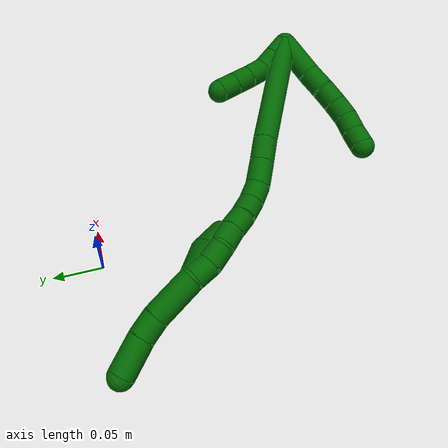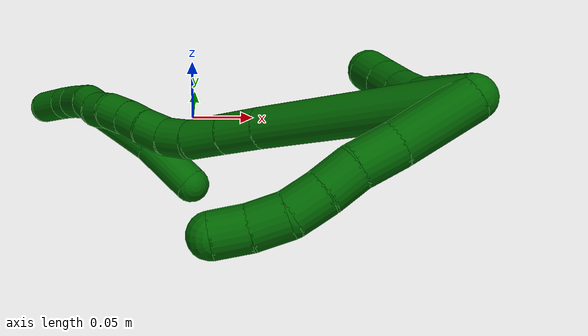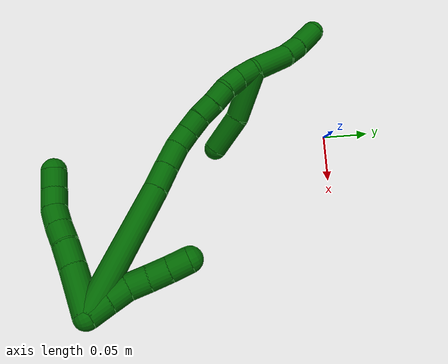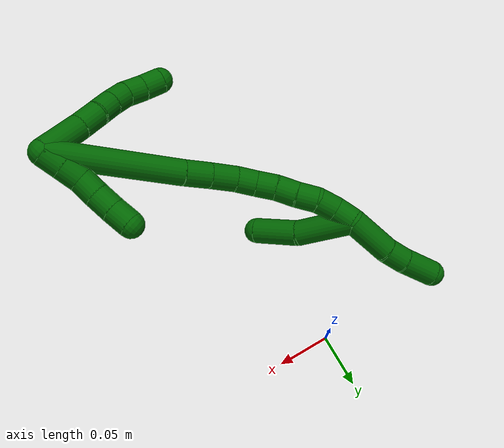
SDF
<sdf version="1.7">
 <world name="default">
  <model name="6">
   <static>0</static>
   <link name="6">
    <collision name="collision-cylinder-e_1_2_8">
     <pose>-0.021931 0.005376 -0.003221 -2.11057 -1.29244 1.85303</pose>
     <geometry><cylinder><radius>0.0125</radius><length>0.045618</length></cylinder></geometry>
     <surface>
      <friction><ode><mu>1.16</mu><mu2>1.16</mu2><slip1>0</slip1><slip2>0</slip2></ode></friction>
      <contact><ode><kp>1e+06</kp><kd>1</kd><max_vel>0</max_vel><min_depth>0.001</min_depth></ode></contact>
     </surface>
    </collision>
    <visual name="visual-cylinder-e_1_2_8">
     <pose>-0.021931 0.005376 -0.003221 -2.11057 -1.29244 1.85303</pose>
     <geometry><cylinder><radius>0.0125</radius><length>0.045618</length></cylinder></geometry>
     <material><ambient>0 0.392157 0.003922 1</ambient></material>
    </visual>
    <collision name="collision-cylinder-e_2_8_9">
     <pose>-0.055355 0.014446 -0.007867 -1.93889 -1.2391 1.60954</pose>
     <geometry><cylinder><radius>0.0125</radius><length>0.024311</length></cylinder></geometry>
     <surface>
      <friction><ode><mu>1.16</mu><mu2>1.16</mu2><slip1>0</slip1><slip2>0</slip2></ode></friction>
      <contact><ode><kp>1e+06</kp><kd>1</kd><max_vel>0</max_vel><min_depth>0.001</min_depth></ode></contact>
     </surface>
    </collision>
    <visual name="visual-cylinder-e_2_8_9">
     <pose>-0.055355 0.014446 -0.007867 -1.93889 -1.2391 1.60954</pose>
     <geometry><cylinder><radius>0.0125</radius><length>0.024311</length></cylinder></geometry>
     <material><ambient>0 0.392157 0.003922 1</ambient></material>
    </visual>
    <collision name="collision-cylinder-e_3_9_10">
     <pose>-0.076717 0.019598 -0.010111 -2.0828 -1.40285 1.93003</pose>
     <geometry><cylinder><radius>0.0125</radius><length>0.02002</length></cylinder></geometry>
     <surface>
      <friction><ode><mu>1.16</mu><mu2>1.16</mu2><slip1>0</slip1><slip2>0</slip2></ode></friction>
      <contact><ode><kp>1e+06</kp><kd>1</kd><max_vel>0</max_vel><min_depth>0.001</min_depth></ode></contact>
     </surface>
    </collision>
    <visual name="visual-cylinder-e_3_9_10">
     <pose>-0.076717 0.019598 -0.010111 -2.0828 -1.40285 1.93003</pose>
     <geometry><cylinder><radius>0.0125</radius><length>0.02002</length></cylinder></geometry>
     <material><ambient>0 0.392157 0.003922 1</ambient></material>
    </visual>
    <collision name="collision-cylinder-e_4_10_11">
     <pose>-0.096269 0.023081 -0.012486 -2.22599 -1.31293 2.00367</pose>
     <geometry><cylinder><radius>0.0125</radius><length>0.020027</length></cylinder></geometry>
     <surface>
      <friction><ode><mu>1.16</mu><mu2>1.16</mu2><slip1>0</slip1><slip2>0</slip2></ode></friction>
      <contact><ode><kp>1e+06</kp><kd>1</kd><max_vel>0</max_vel><min_depth>0.001</min_depth></ode></contact>
     </surface>
    </collision>
    <visual name="visual-cylinder-e_4_10_11">
     <pose>-0.096269 0.023081 -0.012486 -2.22599 -1.31293 2.00367</pose>
     <geometry><cylinder><radius>0.0125</radius><length>0.020027</length></cylinder></geometry>
     <material><ambient>0 0.392157 0.003922 1</ambient></material>
    </visual>
    <collision name="collision-cylinder-e_5_11_12">
     <pose>-0.114472 0.028664 -0.017884 -2.39462 -1.01979 1.91912</pose>
     <geometry><cylinder><radius>0.0125</radius><length>0.020003</length></cylinder></geometry>
     <surface>
      <friction><ode><mu>1.16</mu><mu2>1.16</mu2><slip1>0</slip1><slip2>0</slip2></ode></friction>
      <contact><ode><kp>1e+06</kp><kd>1</kd><max_vel>0</max_vel><min_depth>0.001</min_depth></ode></contact>
     </surface>
    </collision>
    <visual name="visual-cylinder-e_5_11_12">
     <pose>-0.114472 0.028664 -0.017884 -2.39462 -1.01979 1.91912</pose>
     <geometry><cylinder><radius>0.0125</radius><length>0.020003</length></cylinder></geometry>
     <material><ambient>0 0.392157 0.003922 1</ambient></material>
    </visual>
    <collision name="collision-cylinder-e_6_12_6">
     <pose>-0.130924 0.037112 -0.025388 -2.21341 -0.914377 1.55346</pose>
     <geometry><cylinder><radius>0.0125</radius><length>0.020021</length></cylinder></geometry>
     <surface>
      <friction><ode><mu>1.16</mu><mu2>1.16</mu2><slip1>0</slip1><slip2>0</slip2></ode></friction>
      <contact><ode><kp>1e+06</kp><kd>1</kd><max_vel>0</max_vel><min_depth>0.001</min_depth></ode></contact>
     </surface>
    </collision>
    <visual name="visual-cylinder-e_6_12_6">
     <pose>-0.130924 0.037112 -0.025388 -2.21341 -0.914377 1.55346</pose>
     <geometry><cylinder><radius>0.0125</radius><length>0.020021</length></cylinder></geometry>
     <material><ambient>0 0.392157 0.003922 1</ambient></material>
    </visual>
    <collision name="collision-cylinder-e_1_2_13">
     <pose>-0.001443 0.000373 -0.009888 -3.10384 -0.144782 2.63228</pose>
     <geometry><cylinder><radius>0.0125</radius><length>0.02</length></cylinder></geometry>
     <surface>
      <friction><ode><mu>1.16</mu><mu2>1.16</mu2><slip1>0</slip1><slip2>0</slip2></ode></friction>
      <contact><ode><kp>1e+06</kp><kd>1</kd><max_vel>0</max_vel><min_depth>0.001</min_depth></ode></contact>
     </surface>
    </collision>
    <visual name="visual-cylinder-e_1_2_13">
     <pose>-0.001443 0.000373 -0.009888 -3.10384 -0.144782 2.63228</pose>
     <geometry><cylinder><radius>0.0125</radius><length>0.02</length></cylinder></geometry>
     <material><ambient>0 0.392157 0.003922 1</ambient></material>
    </visual>
    <collision name="collision-cylinder-e_2_13_14">
     <pose>-0.004238 0.001103 -0.029678 -3.10563 -0.135615 2.62388</pose>
     <geometry><cylinder><radius>0.0125</radius><length>0.02</length></cylinder></geometry>
     <surface>
      <friction><ode><mu>1.16</mu><mu2>1.16</mu2><slip1>0</slip1><slip2>0</slip2></ode></friction>
      <contact><ode><kp>1e+06</kp><kd>1</kd><max_vel>0</max_vel><min_depth>0.001</min_depth></ode></contact>
     </surface>
    </collision>
    <visual name="visual-cylinder-e_2_13_14">
     <pose>-0.004238 0.001103 -0.029678 -3.10563 -0.135615 2.62388</pose>
     <geometry><cylinder><radius>0.0125</radius><length>0.02</length></cylinder></geometry>
     <material><ambient>0 0.392157 0.003922 1</ambient></material>
    </visual>
    <collision name="collision-cylinder-e_3_14_15">
     <pose>-0.003851 0.002511 -0.049372 -3.03459 0.174774 -2.04429</pose>
     <geometry><cylinder><radius>0.0125</radius><length>0.02</length></cylinder></geometry>
     <surface>
      <friction><ode><mu>1.16</mu><mu2>1.16</mu2><slip1>0</slip1><slip2>0</slip2></ode></friction>
      <contact><ode><kp>1e+06</kp><kd>1</kd><max_vel>0</max_vel><min_depth>0.001</min_depth></ode></contact>
     </surface>
    </collision>
    <visual name="visual-cylinder-e_3_14_15">
     <pose>-0.003851 0.002511 -0.049372 -3.03459 0.174774 -2.04429</pose>
     <geometry><cylinder><radius>0.0125</radius><length>0.02</length></cylinder></geometry>
     <material><ambient>0 0.392157 0.003922 1</ambient></material>
    </visual>
    <collision name="collision-cylinder-e_4_15_16">
     <pose>-8.7e-05 0.005479 -0.068767 -2.9447 0.203903 -1.606</pose>
     <geometry><cylinder><radius>0.0125</radius><length>0.02</length></cylinder></geometry>
     <surface>
      <friction><ode><mu>1.16</mu><mu2>1.16</mu2><slip1>0</slip1><slip2>0</slip2></ode></friction>
      <contact><ode><kp>1e+06</kp><kd>1</kd><max_vel>0</max_vel><min_depth>0.001</min_depth></ode></contact>
     </surface>
    </collision>
    <visual name="visual-cylinder-e_4_15_16">
     <pose>-8.7e-05 0.005479 -0.068767 -2.9447 0.203903 -1.606</pose>
     <geometry><cylinder><radius>0.0125</radius><length>0.02</length></cylinder></geometry>
     <material><ambient>0 0.392157 0.003922 1</ambient></material>
    </visual>
    <collision name="collision-cylinder-e_5_16_5">
     <pose>0.003865 0.009742 -0.087898 -2.89999 0.193878 -1.35078</pose>
     <geometry><cylinder><radius>0.0125</radius><length>0.02</length></cylinder></geometry>
     <surface>
      <friction><ode><mu>1.16</mu><mu2>1.16</mu2><slip1>0</slip1><slip2>0</slip2></ode></friction>
      <contact><ode><kp>1e+06</kp><kd>1</kd><max_vel>0</max_vel><min_depth>0.001</min_depth></ode></contact>
     </surface>
    </collision>
    <visual name="visual-cylinder-e_5_16_5">
     <pose>0.003865 0.009742 -0.087898 -2.89999 0.193878 -1.35078</pose>
     <geometry><cylinder><radius>0.0125</radius><length>0.02</length></cylinder></geometry>
     <material><ambient>0 0.392157 0.003922 1</ambient></material>
    </visual>
    <collision name="collision-cylinder-e_1_2_17">
     <pose>-0.033297 0.017874 -0.051329 -2.8065 -0.549648 2.06099</pose>
     <geometry><cylinder><radius>0.0125</radius><length>0.12748</length></cylinder></geometry>
     <surface>
      <friction><ode><mu>1.16</mu><mu2>1.16</mu2><slip1>0</slip1><slip2>0</slip2></ode></friction>
      <contact><ode><kp>1e+06</kp><kd>1</kd><max_vel>0</max_vel><min_depth>0.001</min_depth></ode></contact>
     </surface>
    </collision>
    <visual name="visual-cylinder-e_1_2_17">
     <pose>-0.033297 0.017874 -0.051329 -2.8065 -0.549648 2.06099</pose>
     <geometry><cylinder><radius>0.0125</radius><length>0.12748</length></cylinder></geometry>
     <material><ambient>0 0.392157 0.003922 1</ambient></material>
    </visual>
    <collision name="collision-cylinder-e_2_17_18">
     <pose>-0.073765 0.039389 -0.112709 -2.79401 -0.590832 2.09508</pose>
     <geometry><cylinder><radius>0.0125</radius><length>0.025746</length></cylinder></geometry>
     <surface>
      <friction><ode><mu>1.16</mu><mu2>1.16</mu2><slip1>0</slip1><slip2>0</slip2></ode></friction>
      <contact><ode><kp>1e+06</kp><kd>1</kd><max_vel>0</max_vel><min_depth>0.001</min_depth></ode></contact>
     </surface>
    </collision>
    <visual name="visual-cylinder-e_2_17_18">
     <pose>-0.073765 0.039389 -0.112709 -2.79401 -0.590832 2.09508</pose>
     <geometry><cylinder><radius>0.0125</radius><length>0.025746</length></cylinder></geometry>
     <material><ambient>0 0.392157 0.003922 1</ambient></material>
    </visual>
    <collision name="collision-cylinder-e_3_18_19">
     <pose>-0.088111 0.046557 -0.133207 -2.81606 -0.576877 2.13061</pose>
     <geometry><cylinder><radius>0.0125</radius><length>0.026309</length></cylinder></geometry>
     <surface>
      <friction><ode><mu>1.16</mu><mu2>1.16</mu2><slip1>0</slip1><slip2>0</slip2></ode></friction>
      <contact><ode><kp>1e+06</kp><kd>1</kd><max_vel>0</max_vel><min_depth>0.001</min_depth></ode></contact>
     </surface>
    </collision>
    <visual name="visual-cylinder-e_3_18_19">
     <pose>-0.088111 0.046557 -0.133207 -2.81606 -0.576877 2.13061</pose>
     <geometry><cylinder><radius>0.0125</radius><length>0.026309</length></cylinder></geometry>
     <material><ambient>0 0.392157 0.003922 1</ambient></material>
    </visual>
    <collision name="collision-cylinder-e_4_19_20">
     <pose>-0.098715 0.053855 -0.152412 -2.7349 -0.345211 1.40377</pose>
     <geometry><cylinder><radius>0.0125</radius><length>0.020268</length></cylinder></geometry>
     <surface>
      <friction><ode><mu>1.16</mu><mu2>1.16</mu2><slip1>0</slip1><slip2>0</slip2></ode></friction>
      <contact><ode><kp>1e+06</kp><kd>1</kd><max_vel>0</max_vel><min_depth>0.001</min_depth></ode></contact>
     </surface>
    </collision>
    <visual name="visual-cylinder-e_4_19_20">
     <pose>-0.098715 0.053855 -0.152412 -2.7349 -0.345211 1.40377</pose>
     <geometry><cylinder><radius>0.0125</radius><length>0.020268</length></cylinder></geometry>
     <material><ambient>0 0.392157 0.003922 1</ambient></material>
    </visual>
    <collision name="collision-cylinder-e_5_20_21">
     <pose>-0.103915 0.062871 -0.169562 -2.5831 -0.177105 0.600543</pose>
     <geometry><cylinder><radius>0.0125</radius><length>0.020105</length></cylinder></geometry>
     <surface>
      <friction><ode><mu>1.16</mu><mu2>1.16</mu2><slip1>0</slip1><slip2>0</slip2></ode></friction>
      <contact><ode><kp>1e+06</kp><kd>1</kd><max_vel>0</max_vel><min_depth>0.001</min_depth></ode></contact>
     </surface>
    </collision>
    <visual name="visual-cylinder-e_5_20_21">
     <pose>-0.103915 0.062871 -0.169562 -2.5831 -0.177105 0.600543</pose>
     <geometry><cylinder><radius>0.0125</radius><length>0.020105</length></cylinder></geometry>
     <material><ambient>0 0.392157 0.003922 1</ambient></material>
    </visual>
    <collision name="collision-cylinder-e_6_21_22">
     <pose>-0.10654 0.072551 -0.186886 -2.68057 -0.085445 0.36036</pose>
     <geometry><cylinder><radius>0.0125</radius><length>0.02002</length></cylinder></geometry>
     <surface>
      <friction><ode><mu>1.16</mu><mu2>1.16</mu2><slip1>0</slip1><slip2>0</slip2></ode></friction>
      <contact><ode><kp>1e+06</kp><kd>1</kd><max_vel>0</max_vel><min_depth>0.001</min_depth></ode></contact>
     </surface>
    </collision>
    <visual name="visual-cylinder-e_6_21_22">
     <pose>-0.10654 0.072551 -0.186886 -2.68057 -0.085445 0.36036</pose>
     <geometry><cylinder><radius>0.0125</radius><length>0.02002</length></cylinder></geometry>
     <material><ambient>0 0.392157 0.003922 1</ambient></material>
    </visual>
    <collision name="collision-cylinder-e_7_22_23">
     <pose>-0.109136 0.081649 -0.204513 -2.64957 -0.17477 0.67139</pose>
     <geometry><cylinder><radius>0.0125</radius><length>0.020036</length></cylinder></geometry>
     <surface>
      <friction><ode><mu>1.16</mu><mu2>1.16</mu2><slip1>0</slip1><slip2>0</slip2></ode></friction>
      <contact><ode><kp>1e+06</kp><kd>1</kd><max_vel>0</max_vel><min_depth>0.001</min_depth></ode></contact>
     </surface>
    </collision>
    <visual name="visual-cylinder-e_7_22_23">
     <pose>-0.109136 0.081649 -0.204513 -2.64957 -0.17477 0.67139</pose>
     <geometry><cylinder><radius>0.0125</radius><length>0.020036</length></cylinder></geometry>
     <material><ambient>0 0.392157 0.003922 1</ambient></material>
    </visual>
    <collision name="collision-cylinder-e_8_23_24">
     <pose>-0.112823 0.08821 -0.222833 -2.9466 -0.195671 1.57427</pose>
     <geometry><cylinder><radius>0.0125</radius><length>0.020004</length></cylinder></geometry>
     <surface>
      <friction><ode><mu>1.16</mu><mu2>1.16</mu2><slip1>0</slip1><slip2>0</slip2></ode></friction>
      <contact><ode><kp>1e+06</kp><kd>1</kd><max_vel>0</max_vel><min_depth>0.001</min_depth></ode></contact>
     </surface>
    </collision>
    <visual name="visual-cylinder-e_8_23_24">
     <pose>-0.112823 0.08821 -0.222833 -2.9466 -0.195671 1.57427</pose>
     <geometry><cylinder><radius>0.0125</radius><length>0.020004</length></cylinder></geometry>
     <material><ambient>0 0.392157 0.003922 1</ambient></material>
    </visual>
    <collision name="collision-cylinder-e_9_24_1">
     <pose>-0.114035 0.092718 -0.242102 -2.8776 0.073199 -0.538196</pose>
     <geometry><cylinder><radius>0.0125</radius><length>0.020032</length></cylinder></geometry>
     <surface>
      <friction><ode><mu>1.16</mu><mu2>1.16</mu2><slip1>0</slip1><slip2>0</slip2></ode></friction>
      <contact><ode><kp>1e+06</kp><kd>1</kd><max_vel>0</max_vel><min_depth>0.001</min_depth></ode></contact>
     </surface>
    </collision>
    <visual name="visual-cylinder-e_9_24_1">
     <pose>-0.114035 0.092718 -0.242102 -2.8776 0.073199 -0.538196</pose>
     <geometry><cylinder><radius>0.0125</radius><length>0.020032</length></cylinder></geometry>
     <material><ambient>0 0.392157 0.003922 1</ambient></material>
    </visual>
    <collision name="collision-cylinder-e_1_1_25">
     <pose>-0.114889 0.095518 -0.273977 -3.13288 -0.071234 2.89823</pose>
     <geometry><cylinder><radius>0.0125</radius><length>0.04458</length></cylinder></geometry>
     <surface>
      <friction><ode><mu>1.16</mu><mu2>1.16</mu2><slip1>0</slip1><slip2>0</slip2></ode></friction>
      <contact><ode><kp>1e+06</kp><kd>1</kd><max_vel>0</max_vel><min_depth>0.001</min_depth></ode></contact>
     </surface>
    </collision>
    <visual name="visual-cylinder-e_1_1_25">
     <pose>-0.114889 0.095518 -0.273977 -3.13288 -0.071234 2.89823</pose>
     <geometry><cylinder><radius>0.0125</radius><length>0.04458</length></cylinder></geometry>
     <material><ambient>0 0.392157 0.003922 1</ambient></material>
    </visual>
    <collision name="collision-cylinder-e_2_25_26">
     <pose>-0.118805 0.096708 -0.306483 -3.04494 -0.222021 2.32288</pose>
     <geometry><cylinder><radius>0.0125</radius><length>0.021163</length></cylinder></geometry>
     <surface>
      <friction><ode><mu>1.16</mu><mu2>1.16</mu2><slip1>0</slip1><slip2>0</slip2></ode></friction>
      <contact><ode><kp>1e+06</kp><kd>1</kd><max_vel>0</max_vel><min_depth>0.001</min_depth></ode></contact>
     </surface>
    </collision>
    <visual name="visual-cylinder-e_2_25_26">
     <pose>-0.118805 0.096708 -0.306483 -3.04494 -0.222021 2.32288</pose>
     <geometry><cylinder><radius>0.0125</radius><length>0.021163</length></cylinder></geometry>
     <material><ambient>0 0.392157 0.003922 1</ambient></material>
    </visual>
    <collision name="collision-cylinder-e_3_26_4">
     <pose>-0.12679 0.099966 -0.332766 -3.00122 -0.336443 2.35663</pose>
     <geometry><cylinder><radius>0.0125</radius><length>0.034258</length></cylinder></geometry>
     <surface>
      <friction><ode><mu>1.16</mu><mu2>1.16</mu2><slip1>0</slip1><slip2>0</slip2></ode></friction>
      <contact><ode><kp>1e+06</kp><kd>1</kd><max_vel>0</max_vel><min_depth>0.001</min_depth></ode></contact>
     </surface>
    </collision>
    <visual name="visual-cylinder-e_3_26_4">
     <pose>-0.12679 0.099966 -0.332766 -3.00122 -0.336443 2.35663</pose>
     <geometry><cylinder><radius>0.0125</radius><length>0.034258</length></cylinder></geometry>
     <material><ambient>0 0.392157 0.003922 1</ambient></material>
    </visual>
    <collision name="collision-cylinder-e_1_1_27">
     <pose>-0.109841 0.070492 -0.238985 1.09613 0.123348 0.075357</pose>
     <geometry><cylinder><radius>0.0125</radius><length>0.056264</length></cylinder></geometry>
     <surface>
      <friction><ode><mu>1.16</mu><mu2>1.16</mu2><slip1>0</slip1><slip2>0</slip2></ode></friction>
      <contact><ode><kp>1e+06</kp><kd>1</kd><max_vel>0</max_vel><min_depth>0.001</min_depth></ode></contact>
     </surface>
    </collision>
    <visual name="visual-cylinder-e_1_1_27">
     <pose>-0.109841 0.070492 -0.238985 1.09613 0.123348 0.075357</pose>
     <geometry><cylinder><radius>0.0125</radius><length>0.056264</length></cylinder></geometry>
     <material><ambient>0 0.392157 0.003922 1</ambient></material>
    </visual>
    <collision name="collision-cylinder-e_2_27_3">
     <pose>-0.10743 0.028655 -0.212517 0.892316 -0.04801 -0.022968</pose>
     <geometry><cylinder><radius>0.0125</radius><length>0.043736</length></cylinder></geometry>
     <surface>
      <friction><ode><mu>1.16</mu><mu2>1.16</mu2><slip1>0</slip1><slip2>0</slip2></ode></friction>
      <contact><ode><kp>1e+06</kp><kd>1</kd><max_vel>0</max_vel><min_depth>0.001</min_depth></ode></contact>
     </surface>
    </collision>
    <visual name="visual-cylinder-e_2_27_3">
     <pose>-0.10743 0.028655 -0.212517 0.892316 -0.04801 -0.022968</pose>
     <geometry><cylinder><radius>0.0125</radius><length>0.043736</length></cylinder></geometry>
     <material><ambient>0 0.392157 0.003922 1</ambient></material>
    </visual>
    <collision name="collision-sphere-3">
     <pose>-0.108479 0.01165 -0.198808 0 -0 0</pose>
     <geometry><sphere><radius>0.0125</radius></sphere></geometry>
     <surface>
      <friction><ode><mu>1.16</mu><mu2>1.16</mu2><slip1>0</slip1><slip2>0</slip2></ode></friction>
      <contact><ode><kp>1e+06</kp><kd>1</kd><max_vel>0</max_vel><min_depth>0.001</min_depth></ode></contact>
     </surface>
    </collision>
    <visual name="visual-sphere-3">
     <pose>-0.108479 0.01165 -0.198808 0 -0 0</pose>
     <geometry><sphere><radius>0.0125</radius></sphere></geometry>
     <material><ambient>0 0.392157 0.003922 1</ambient></material>
    </visual>
    <collision name="collision-sphere-27">
     <pose>-0.10638 0.04566 -0.226225 0 -0 0</pose>
     <geometry><sphere><radius>0.0125</radius></sphere></geometry>
     <surface>
      <friction><ode><mu>1.16</mu><mu2>1.16</mu2><slip1>0</slip1><slip2>0</slip2></ode></friction>
      <contact><ode><kp>1e+06</kp><kd>1</kd><max_vel>0</max_vel><min_depth>0.001</min_depth></ode></contact>
     </surface>
    </collision>
    <visual name="visual-sphere-27">
     <pose>-0.10638 0.04566 -0.226225 0 -0 0</pose>
     <geometry><sphere><radius>0.0125</radius></sphere></geometry>
     <material><ambient>0 0.392157 0.003922 1</ambient></material>
    </visual>
    <collision name="collision-sphere-4">
     <pose>-0.132445 0.102228 -0.348776 0 -0 0</pose>
     <geometry><sphere><radius>0.0125</radius></sphere></geometry>
     <surface>
      <friction><ode><mu>1.16</mu><mu2>1.16</mu2><slip1>0</slip1><slip2>0</slip2></ode></friction>
      <contact><ode><kp>1e+06</kp><kd>1</kd><max_vel>0</max_vel><min_depth>0.001</min_depth></ode></contact>
     </surface>
    </collision>
    <visual name="visual-sphere-4">
     <pose>-0.132445 0.102228 -0.348776 0 -0 0</pose>
     <geometry><sphere><radius>0.0125</radius></sphere></geometry>
     <material><ambient>0 0.392157 0.003922 1</ambient></material>
    </visual>
    <collision name="collision-sphere-26">
     <pose>-0.121135 0.097704 -0.316757 0 -0 0</pose>
     <geometry><sphere><radius>0.0125</radius></sphere></geometry>
     <surface>
      <friction><ode><mu>1.16</mu><mu2>1.16</mu2><slip1>0</slip1><slip2>0</slip2></ode></friction>
      <contact><ode><kp>1e+06</kp><kd>1</kd><max_vel>0</max_vel><min_depth>0.001</min_depth></ode></contact>
     </surface>
    </collision>
    <visual name="visual-sphere-26">
     <pose>-0.121135 0.097704 -0.316757 0 -0 0</pose>
     <geometry><sphere><radius>0.0125</radius></sphere></geometry>
     <material><ambient>0 0.392157 0.003922 1</ambient></material>
    </visual>
    <collision name="collision-sphere-25">
     <pose>-0.116475 0.095712 -0.29621 0 -0 0</pose>
     <geometry><sphere><radius>0.0125</radius></sphere></geometry>
     <surface>
      <friction><ode><mu>1.16</mu><mu2>1.16</mu2><slip1>0</slip1><slip2>0</slip2></ode></friction>
      <contact><ode><kp>1e+06</kp><kd>1</kd><max_vel>0</max_vel><min_depth>0.001</min_depth></ode></contact>
     </surface>
    </collision>
    <visual name="visual-sphere-25">
     <pose>-0.116475 0.095712 -0.29621 0 -0 0</pose>
     <geometry><sphere><radius>0.0125</radius></sphere></geometry>
     <material><ambient>0 0.392157 0.003922 1</ambient></material>
    </visual>
    <collision name="collision-sphere-1">
     <pose>-0.113303 0.095324 -0.251745 0 -0 0</pose>
     <geometry><sphere><radius>0.0125</radius></sphere></geometry>
     <surface>
      <friction><ode><mu>1.16</mu><mu2>1.16</mu2><slip1>0</slip1><slip2>0</slip2></ode></friction>
      <contact><ode><kp>1e+06</kp><kd>1</kd><max_vel>0</max_vel><min_depth>0.001</min_depth></ode></contact>
     </surface>
    </collision>
    <visual name="visual-sphere-1">
     <pose>-0.113303 0.095324 -0.251745 0 -0 0</pose>
     <geometry><sphere><radius>0.0125</radius></sphere></geometry>
     <material><ambient>0 0.392157 0.003922 1</ambient></material>
    </visual>
    <collision name="collision-sphere-24">
     <pose>-0.114768 0.090111 -0.232458 0 -0 0</pose>
     <geometry><sphere><radius>0.0125</radius></sphere></geometry>
     <surface>
      <friction><ode><mu>1.16</mu><mu2>1.16</mu2><slip1>0</slip1><slip2>0</slip2></ode></friction>
      <contact><ode><kp>1e+06</kp><kd>1</kd><max_vel>0</max_vel><min_depth>0.001</min_depth></ode></contact>
     </surface>
    </collision>
    <visual name="visual-sphere-24">
     <pose>-0.114768 0.090111 -0.232458 0 -0 0</pose>
     <geometry><sphere><radius>0.0125</radius></sphere></geometry>
     <material><ambient>0 0.392157 0.003922 1</ambient></material>
    </visual>
    <collision name="collision-sphere-23">
     <pose>-0.110878 0.086309 -0.213208 0 -0 0</pose>
     <geometry><sphere><radius>0.0125</radius></sphere></geometry>
     <surface>
      <friction><ode><mu>1.16</mu><mu2>1.16</mu2><slip1>0</slip1><slip2>0</slip2></ode></friction>
      <contact><ode><kp>1e+06</kp><kd>1</kd><max_vel>0</max_vel><min_depth>0.001</min_depth></ode></contact>
     </surface>
    </collision>
    <visual name="visual-sphere-23">
     <pose>-0.110878 0.086309 -0.213208 0 -0 0</pose>
     <geometry><sphere><radius>0.0125</radius></sphere></geometry>
     <material><ambient>0 0.392157 0.003922 1</ambient></material>
    </visual>
    <collision name="collision-sphere-22">
     <pose>-0.107394 0.076988 -0.195818 0 -0 0</pose>
     <geometry><sphere><radius>0.0125</radius></sphere></geometry>
     <surface>
      <friction><ode><mu>1.16</mu><mu2>1.16</mu2><slip1>0</slip1><slip2>0</slip2></ode></friction>
      <contact><ode><kp>1e+06</kp><kd>1</kd><max_vel>0</max_vel><min_depth>0.001</min_depth></ode></contact>
     </surface>
    </collision>
    <visual name="visual-sphere-22">
     <pose>-0.107394 0.076988 -0.195818 0 -0 0</pose>
     <geometry><sphere><radius>0.0125</radius></sphere></geometry>
     <material><ambient>0 0.392157 0.003922 1</ambient></material>
    </visual>
    <collision name="collision-sphere-21">
     <pose>-0.105686 0.068114 -0.177954 0 -0 0</pose>
     <geometry><sphere><radius>0.0125</radius></sphere></geometry>
     <surface>
      <friction><ode><mu>1.16</mu><mu2>1.16</mu2><slip1>0</slip1><slip2>0</slip2></ode></friction>
      <contact><ode><kp>1e+06</kp><kd>1</kd><max_vel>0</max_vel><min_depth>0.001</min_depth></ode></contact>
     </surface>
    </collision>
    <visual name="visual-sphere-21">
     <pose>-0.105686 0.068114 -0.177954 0 -0 0</pose>
     <geometry><sphere><radius>0.0125</radius></sphere></geometry>
     <material><ambient>0 0.392157 0.003922 1</ambient></material>
    </visual>
    <collision name="collision-sphere-12">
     <pose>-0.122994 0.032221 -0.021726 0 -0 0</pose>
     <geometry><sphere><radius>0.0125</radius></sphere></geometry>
     <surface>
      <friction><ode><mu>1.16</mu><mu2>1.16</mu2><slip1>0</slip1><slip2>0</slip2></ode></friction>
      <contact><ode><kp>1e+06</kp><kd>1</kd><max_vel>0</max_vel><min_depth>0.001</min_depth></ode></contact>
     </surface>
    </collision>
    <visual name="visual-sphere-12">
     <pose>-0.122994 0.032221 -0.021726 0 -0 0</pose>
     <geometry><sphere><radius>0.0125</radius></sphere></geometry>
     <material><ambient>0 0.392157 0.003922 1</ambient></material>
    </visual>
    <collision name="collision-sphere-11">
     <pose>-0.105951 0.025106 -0.014042 0 -0 0</pose>
     <geometry><sphere><radius>0.0125</radius></sphere></geometry>
     <surface>
      <friction><ode><mu>1.16</mu><mu2>1.16</mu2><slip1>0</slip1><slip2>0</slip2></ode></friction>
      <contact><ode><kp>1e+06</kp><kd>1</kd><max_vel>0</max_vel><min_depth>0.001</min_depth></ode></contact>
     </surface>
    </collision>
    <visual name="visual-sphere-11">
     <pose>-0.105951 0.025106 -0.014042 0 -0 0</pose>
     <geometry><sphere><radius>0.0125</radius></sphere></geometry>
     <material><ambient>0 0.392157 0.003922 1</ambient></material>
    </visual>
    <collision name="collision-sphere-10">
     <pose>-0.086587 0.021056 -0.01093 0 -0 0</pose>
     <geometry><sphere><radius>0.0125</radius></sphere></geometry>
     <surface>
      <friction><ode><mu>1.16</mu><mu2>1.16</mu2><slip1>0</slip1><slip2>0</slip2></ode></friction>
      <contact><ode><kp>1e+06</kp><kd>1</kd><max_vel>0</max_vel><min_depth>0.001</min_depth></ode></contact>
     </surface>
    </collision>
    <visual name="visual-sphere-10">
     <pose>-0.086587 0.021056 -0.01093 0 -0 0</pose>
     <geometry><sphere><radius>0.0125</radius></sphere></geometry>
     <material><ambient>0 0.392157 0.003922 1</ambient></material>
    </visual>
    <collision name="collision-sphere-9">
     <pose>-0.066848 0.018139 -0.009291 0 -0 0</pose>
     <geometry><sphere><radius>0.0125</radius></sphere></geometry>
     <surface>
      <friction><ode><mu>1.16</mu><mu2>1.16</mu2><slip1>0</slip1><slip2>0</slip2></ode></friction>
      <contact><ode><kp>1e+06</kp><kd>1</kd><max_vel>0</max_vel><min_depth>0.001</min_depth></ode></contact>
     </surface>
    </collision>
    <visual name="visual-sphere-9">
     <pose>-0.066848 0.018139 -0.009291 0 -0 0</pose>
     <geometry><sphere><radius>0.0125</radius></sphere></geometry>
     <material><ambient>0 0.392157 0.003922 1</ambient></material>
    </visual>
    <collision name="collision-sphere-2">
     <geometry><sphere><radius>0.0125</radius></sphere></geometry>
     <surface>
      <friction><ode><mu>1.16</mu><mu2>1.16</mu2><slip1>0</slip1><slip2>0</slip2></ode></friction>
      <contact><ode><kp>1e+06</kp><kd>1</kd><max_vel>0</max_vel><min_depth>0.001</min_depth></ode></contact>
     </surface>
    </collision>
    <visual name="visual-sphere-2">
     <geometry><sphere><radius>0.0125</radius></sphere></geometry>
     <material><ambient>0 0.392157 0.003922 1</ambient></material>
    </visual>
    <collision name="collision-sphere-19">
     <pose>-0.095285 0.050083 -0.143654 0 -0 0</pose>
     <geometry><sphere><radius>0.0125</radius></sphere></geometry>
     <surface>
      <friction><ode><mu>1.16</mu><mu2>1.16</mu2><slip1>0</slip1><slip2>0</slip2></ode></friction>
      <contact><ode><kp>1e+06</kp><kd>1</kd><max_vel>0</max_vel><min_depth>0.001</min_depth></ode></contact>
     </surface>
    </collision>
    <visual name="visual-sphere-19">
     <pose>-0.095285 0.050083 -0.143654 0 -0 0</pose>
     <geometry><sphere><radius>0.0125</radius></sphere></geometry>
     <material><ambient>0 0.392157 0.003922 1</ambient></material>
    </visual>
    <collision name="collision-sphere-8">
     <pose>-0.043863 0.010753 -0.006442 0 -0 0</pose>
     <geometry><sphere><radius>0.0125</radius></sphere></geometry>
     <surface>
      <friction><ode><mu>1.16</mu><mu2>1.16</mu2><slip1>0</slip1><slip2>0</slip2></ode></friction>
      <contact><ode><kp>1e+06</kp><kd>1</kd><max_vel>0</max_vel><min_depth>0.001</min_depth></ode></contact>
     </surface>
    </collision>
    <visual name="visual-sphere-8">
     <pose>-0.043863 0.010753 -0.006442 0 -0 0</pose>
     <geometry><sphere><radius>0.0125</radius></sphere></geometry>
     <material><ambient>0 0.392157 0.003922 1</ambient></material>
    </visual>
    <collision name="collision-sphere-6">
     <pose>-0.138854 0.042003 -0.029049 0 -0 0</pose>
     <geometry><sphere><radius>0.0125</radius></sphere></geometry>
     <surface>
      <friction><ode><mu>1.16</mu><mu2>1.16</mu2><slip1>0</slip1><slip2>0</slip2></ode></friction>
      <contact><ode><kp>1e+06</kp><kd>1</kd><max_vel>0</max_vel><min_depth>0.001</min_depth></ode></contact>
     </surface>
    </collision>
    <visual name="visual-sphere-6">
     <pose>-0.138854 0.042003 -0.029049 0 -0 0</pose>
     <geometry><sphere><radius>0.0125</radius></sphere></geometry>
     <material><ambient>0 0.392157 0.003922 1</ambient></material>
    </visual>
    <collision name="collision-sphere-13">
     <pose>-0.002886 0.000747 -0.019777 0 -0 0</pose>
     <geometry><sphere><radius>0.0125</radius></sphere></geometry>
     <surface>
      <friction><ode><mu>1.16</mu><mu2>1.16</mu2><slip1>0</slip1><slip2>0</slip2></ode></friction>
      <contact><ode><kp>1e+06</kp><kd>1</kd><max_vel>0</max_vel><min_depth>0.001</min_depth></ode></contact>
     </surface>
    </collision>
    <visual name="visual-sphere-13">
     <pose>-0.002886 0.000747 -0.019777 0 -0 0</pose>
     <geometry><sphere><radius>0.0125</radius></sphere></geometry>
     <material><ambient>0 0.392157 0.003922 1</ambient></material>
    </visual>
    <collision name="collision-sphere-14">
     <pose>-0.00559 0.001459 -0.03958 0 -0 0</pose>
     <geometry><sphere><radius>0.0125</radius></sphere></geometry>
     <surface>
      <friction><ode><mu>1.16</mu><mu2>1.16</mu2><slip1>0</slip1><slip2>0</slip2></ode></friction>
      <contact><ode><kp>1e+06</kp><kd>1</kd><max_vel>0</max_vel><min_depth>0.001</min_depth></ode></contact>
     </surface>
    </collision>
    <visual name="visual-sphere-14">
     <pose>-0.00559 0.001459 -0.03958 0 -0 0</pose>
     <geometry><sphere><radius>0.0125</radius></sphere></geometry>
     <material><ambient>0 0.392157 0.003922 1</ambient></material>
    </visual>
    <collision name="collision-sphere-15">
     <pose>-0.002112 0.003563 -0.059163 0 -0 0</pose>
     <geometry><sphere><radius>0.0125</radius></sphere></geometry>
     <surface>
      <friction><ode><mu>1.16</mu><mu2>1.16</mu2><slip1>0</slip1><slip2>0</slip2></ode></friction>
      <contact><ode><kp>1e+06</kp><kd>1</kd><max_vel>0</max_vel><min_depth>0.001</min_depth></ode></contact>
     </surface>
    </collision>
    <visual name="visual-sphere-15">
     <pose>-0.002112 0.003563 -0.059163 0 -0 0</pose>
     <geometry><sphere><radius>0.0125</radius></sphere></geometry>
     <material><ambient>0 0.392157 0.003922 1</ambient></material>
    </visual>
    <collision name="collision-sphere-16">
     <pose>0.001938 0.007394 -0.07837 0 -0 0</pose>
     <geometry><sphere><radius>0.0125</radius></sphere></geometry>
     <surface>
      <friction><ode><mu>1.16</mu><mu2>1.16</mu2><slip1>0</slip1><slip2>0</slip2></ode></friction>
      <contact><ode><kp>1e+06</kp><kd>1</kd><max_vel>0</max_vel><min_depth>0.001</min_depth></ode></contact>
     </surface>
    </collision>
    <visual name="visual-sphere-16">
     <pose>0.001938 0.007394 -0.07837 0 -0 0</pose>
     <geometry><sphere><radius>0.0125</radius></sphere></geometry>
     <material><ambient>0 0.392157 0.003922 1</ambient></material>
    </visual>
    <collision name="collision-sphere-5">
     <pose>0.005791 0.01209 -0.097425 0 -0 0</pose>
     <geometry><sphere><radius>0.0125</radius></sphere></geometry>
     <surface>
      <friction><ode><mu>1.16</mu><mu2>1.16</mu2><slip1>0</slip1><slip2>0</slip2></ode></friction>
      <contact><ode><kp>1e+06</kp><kd>1</kd><max_vel>0</max_vel><min_depth>0.001</min_depth></ode></contact>
     </surface>
    </collision>
    <visual name="visual-sphere-5">
     <pose>0.005791 0.01209 -0.097425 0 -0 0</pose>
     <geometry><sphere><radius>0.0125</radius></sphere></geometry>
     <material><ambient>0 0.392157 0.003922 1</ambient></material>
    </visual>
    <collision name="collision-sphere-17">
     <pose>-0.066594 0.035748 -0.102658 0 -0 0</pose>
     <geometry><sphere><radius>0.0125</radius></sphere></geometry>
     <surface>
      <friction><ode><mu>1.16</mu><mu2>1.16</mu2><slip1>0</slip1><slip2>0</slip2></ode></friction>
      <contact><ode><kp>1e+06</kp><kd>1</kd><max_vel>0</max_vel><min_depth>0.001</min_depth></ode></contact>
     </surface>
    </collision>
    <visual name="visual-sphere-17">
     <pose>-0.066594 0.035748 -0.102658 0 -0 0</pose>
     <geometry><sphere><radius>0.0125</radius></sphere></geometry>
     <material><ambient>0 0.392157 0.003922 1</ambient></material>
    </visual>
    <collision name="collision-sphere-18">
     <pose>-0.080936 0.043031 -0.12276 0 -0 0</pose>
     <geometry><sphere><radius>0.0125</radius></sphere></geometry>
     <surface>
      <friction><ode><mu>1.16</mu><mu2>1.16</mu2><slip1>0</slip1><slip2>0</slip2></ode></friction>
      <contact><ode><kp>1e+06</kp><kd>1</kd><max_vel>0</max_vel><min_depth>0.001</min_depth></ode></contact>
     </surface>
    </collision>
    <visual name="visual-sphere-18">
     <pose>-0.080936 0.043031 -0.12276 0 -0 0</pose>
     <geometry><sphere><radius>0.0125</radius></sphere></geometry>
     <material><ambient>0 0.392157 0.003922 1</ambient></material>
    </visual>
    <collision name="collision-sphere-20">
     <pose>-0.102144 0.057627 -0.161171 0 -0 0</pose>
     <geometry><sphere><radius>0.0125</radius></sphere></geometry>
     <surface>
      <friction><ode><mu>1.16</mu><mu2>1.16</mu2><slip1>0</slip1><slip2>0</slip2></ode></friction>
      <contact><ode><kp>1e+06</kp><kd>1</kd><max_vel>0</max_vel><min_depth>0.001</min_depth></ode></contact>
     </surface>
    </collision>
    <visual name="visual-sphere-20">
     <pose>-0.102144 0.057627 -0.161171 0 -0 0</pose>
     <geometry><sphere><radius>0.0125</radius></sphere></geometry>
     <material><ambient>0 0.392157 0.003922 1</ambient></material>
    </visual>
    <inertial>
     <pose>-0.073476 0.042245 -0.128005 0 -0 0</pose>
     <mass>0.75</mass>
     <inertia><ixx>7.1e-05</ixx><ixy>0</ixy><ixz>0</ixz><iyy>0.000308</iyy><iyz>0</iyz><izz>4.2e-05</izz></inertia>
    </inertial>
   </link>
   <pose>0.150808 -0.244177 0.136452 1.10717 -0.590671 0.642339</pose>
  </model>
 </world>
</sdf>
